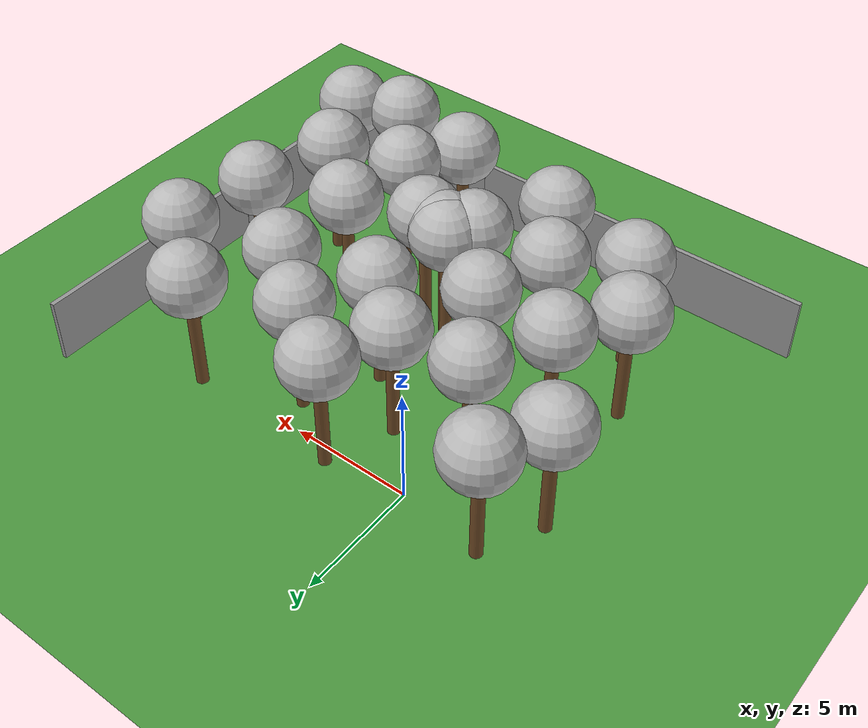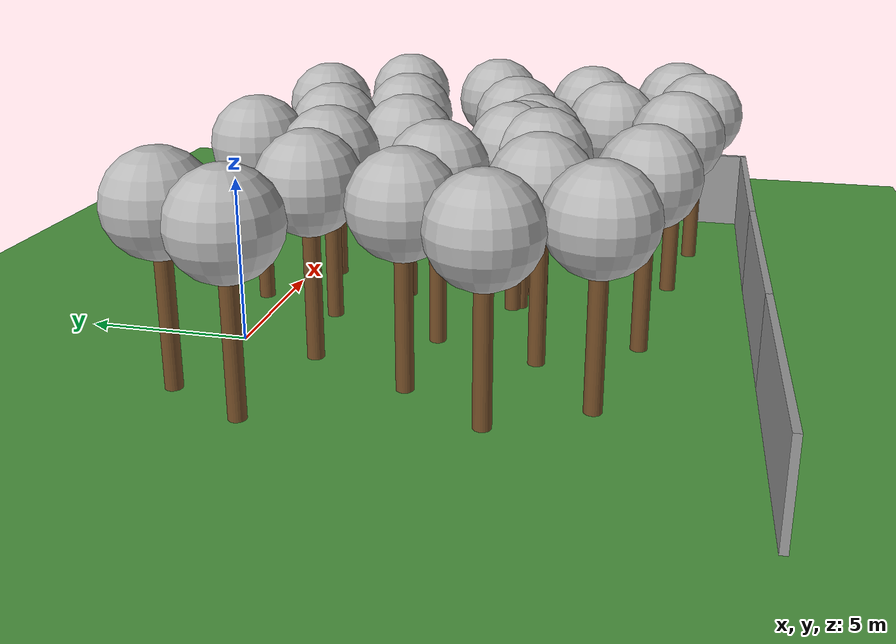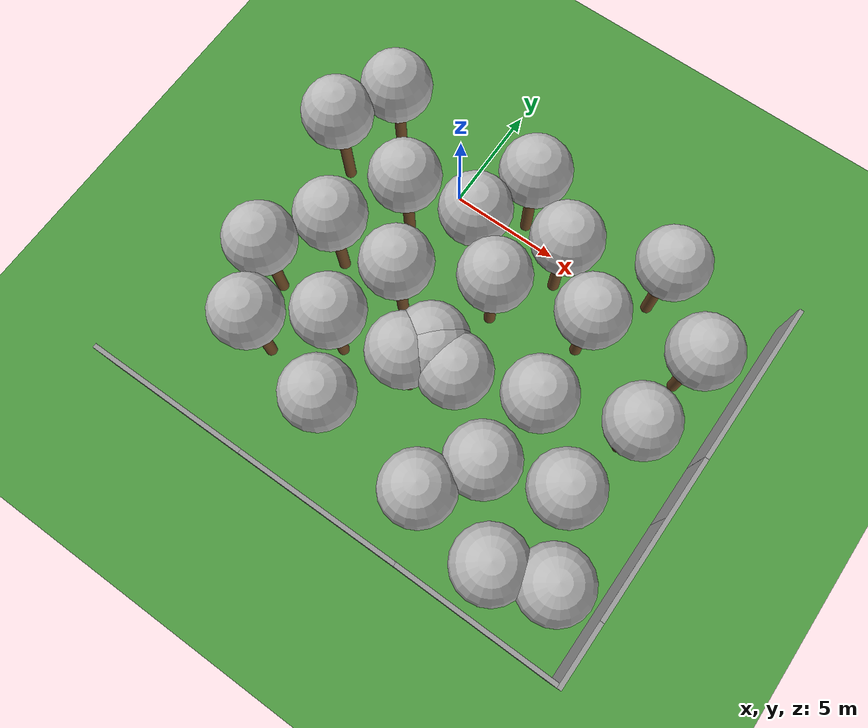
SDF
<sdf version="1.7">
 <world name="default">
  <model name="tree_simple478">
   <static>1</static>
   <link name="link">
    <pose>0 0 0.1 0 -0 0</pose>
    <collision name="collision_trunk">
     <pose>0 0 2 0 -0 0</pose>
     <geometry><cylinder><radius>0.25</radius><length>4</length></cylinder></geometry>
    </collision>
    <collision name="collision_treetop">
     <pose>0 0 5.2 0 -0 0</pose>
     <geometry><sphere><radius>1.5</radius></sphere></geometry>
    </collision>
    <visual name="trunk">
     <pose>0 0 2 0 -0 0</pose>
     <geometry><cylinder><radius>0.25</radius><length>4</length></cylinder></geometry>
     <material>
      <script>
       <uri>model://tree_simple/scripts</uri>
       <uri>model://tree_simple/materials/textures</uri>
       <name>TreeSimple/Trunk</name>
      </script>
     </material>
    </visual>
    <visual name="treetop">
     <pose>0 0 5.2 0 -0 0</pose>
     <geometry><sphere><radius>1.5</radius></sphere></geometry>
     <material>
      <script>
       <uri>model://tree_simple/scripts</uri>
       <uri>model://tree_simple/materials/textures</uri>
       <name>TreeSimple/Treetop</name>
      </script>
     </material>
    </visual>
   </link>
   <pose>6.74093 -12.3163 0 0 -0 0</pose>
  </model>
  <model name="tree_simple463">
   <static>1</static>
   <link name="link">
    <pose>0 0 0.1 0 -0 0</pose>
    <collision name="collision_trunk">
     <pose>0 0 2 0 -0 0</pose>
     <geometry><cylinder><radius>0.25</radius><length>4</length></cylinder></geometry>
    </collision>
    <collision name="collision_treetop">
     <pose>0 0 5.2 0 -0 0</pose>
     <geometry><sphere><radius>1.5</radius></sphere></geometry>
    </collision>
    <visual name="trunk">
     <pose>0 0 2 0 -0 0</pose>
     <geometry><cylinder><radius>0.25</radius><length>4</length></cylinder></geometry>
     <material>
      <script>
       <uri>model://tree_simple/scripts</uri>
       <uri>model://tree_simple/materials/textures</uri>
       <name>TreeSimple/Trunk</name>
      </script>
     </material>
    </visual>
    <visual name="treetop">
     <pose>0 0 5.2 0 -0 0</pose>
     <geometry><sphere><radius>1.5</radius></sphere></geometry>
     <material>
      <script>
       <uri>model://tree_simple/scripts</uri>
       <uri>model://tree_simple/materials/textures</uri>
       <name>TreeSimple/Treetop</name>
      </script>
     </material>
    </visual>
   </link>
   <pose>4.14453 -7.71734 0 0 -0 0</pose>
  </model>
  <model name="tree_simple432">
   <static>1</static>
   <link name="link">
    <pose>0 0 0.1 0 -0 0</pose>
    <collision name="collision_trunk">
     <pose>0 0 2 0 -0 0</pose>
     <geometry><cylinder><radius>0.25</radius><length>4</length></cylinder></geometry>
    </collision>
    <collision name="collision_treetop">
     <pose>0 0 5.2 0 -0 0</pose>
     <geometry><sphere><radius>1.5</radius></sphere></geometry>
    </collision>
    <visual name="trunk">
     <pose>0 0 2 0 -0 0</pose>
     <geometry><cylinder><radius>0.25</radius><length>4</length></cylinder></geometry>
     <material>
      <script>
       <uri>model://tree_simple/scripts</uri>
       <uri>model://tree_simple/materials/textures</uri>
       <name>TreeSimple/Trunk</name>
      </script>
     </material>
    </visual>
    <visual name="treetop">
     <pose>0 0 5.2 0 -0 0</pose>
     <geometry><sphere><radius>1.5</radius></sphere></geometry>
     <material>
      <script>
       <uri>model://tree_simple/scripts</uri>
       <uri>model://tree_simple/materials/textures</uri>
       <name>TreeSimple/Treetop</name>
      </script>
     </material>
    </visual>
   </link>
   <pose>8.39658 -6.88849 0 0 -0 0</pose>
  </model>
  <model name="tree_simple392">
   <static>1</static>
   <link name="link">
    <pose>0 0 0.1 0 -0 0</pose>
    <collision name="collision_trunk">
     <pose>0 0 2 0 -0 0</pose>
     <geometry><cylinder><radius>0.25</radius><length>4</length></cylinder></geometry>
    </collision>
    <collision name="collision_treetop">
     <pose>0 0 5.2 0 -0 0</pose>
     <geometry><sphere><radius>1.5</radius></sphere></geometry>
    </collision>
    <visual name="trunk">
     <pose>0 0 2 0 -0 0</pose>
     <geometry><cylinder><radius>0.25</radius><length>4</length></cylinder></geometry>
     <material>
      <script>
       <uri>model://tree_simple/scripts</uri>
       <uri>model://tree_simple/materials/textures</uri>
       <name>TreeSimple/Trunk</name>
      </script>
     </material>
    </visual>
    <visual name="treetop">
     <pose>0 0 5.2 0 -0 0</pose>
     <geometry><sphere><radius>1.5</radius></sphere></geometry>
     <material>
      <script>
       <uri>model://tree_simple/scripts</uri>
       <uri>model://tree_simple/materials/textures</uri>
       <name>TreeSimple/Treetop</name>
      </script>
     </material>
    </visual>
   </link>
   <pose>-2.49228 -10.6348 0 0 -0 0</pose>
  </model>
  <model name="tree_simple389">
   <static>1</static>
   <link name="link">
    <pose>0 0 0.1 0 -0 0</pose>
    <collision name="collision_trunk">
     <pose>0 0 2 0 -0 0</pose>
     <geometry><cylinder><radius>0.25</radius><length>4</length></cylinder></geometry>
    </collision>
    <collision name="collision_treetop">
     <pose>0 0 5.2 0 -0 0</pose>
     <geometry><sphere><radius>1.5</radius></sphere></geometry>
    </collision>
    <visual name="trunk">
     <pose>0 0 2 0 -0 0</pose>
     <geometry><cylinder><radius>0.25</radius><length>4</length></cylinder></geometry>
     <material>
      <script>
       <uri>model://tree_simple/scripts</uri>
       <uri>model://tree_simple/materials/textures</uri>
       <name>TreeSimple/Trunk</name>
      </script>
     </material>
    </visual>
    <visual name="treetop">
     <pose>0 0 5.2 0 -0 0</pose>
     <geometry><sphere><radius>1.5</radius></sphere></geometry>
     <material>
      <script>
       <uri>model://tree_simple/scripts</uri>
       <uri>model://tree_simple/materials/textures</uri>
       <name>TreeSimple/Treetop</name>
      </script>
     </material>
    </visual>
   </link>
   <pose>12.5934 -12.2598 0 0 -0 0</pose>
  </model>
  <model name="tree_simple376">
   <static>1</static>
   <link name="link">
    <pose>0 0 0.1 0 -0 0</pose>
    <collision name="collision_trunk">
     <pose>0 0 2 0 -0 0</pose>
     <geometry><cylinder><radius>0.25</radius><length>4</length></cylinder></geometry>
    </collision>
    <collision name="collision_treetop">
     <pose>0 0 5.2 0 -0 0</pose>
     <geometry><sphere><radius>1.5</radius></sphere></geometry>
    </collision>
    <visual name="trunk">
     <pose>0 0 2 0 -0 0</pose>
     <geometry><cylinder><radius>0.25</radius><length>4</length></cylinder></geometry>
     <material>
      <script>
       <uri>model://tree_simple/scripts</uri>
       <uri>model://tree_simple/materials/textures</uri>
       <name>TreeSimple/Trunk</name>
      </script>
     </material>
    </visual>
    <visual name="treetop">
     <pose>0 0 5.2 0 -0 0</pose>
     <geometry><sphere><radius>1.5</radius></sphere></geometry>
     <material>
      <script>
       <uri>model://tree_simple/scripts</uri>
       <uri>model://tree_simple/materials/textures</uri>
       <name>TreeSimple/Treetop</name>
      </script>
     </material>
    </visual>
   </link>
   <pose>-3.57496 0.511559 0 0 -0 0</pose>
  </model>
  <model name="tree_simple308">
   <static>1</static>
   <link name="link">
    <pose>0 0 0.1 0 -0 0</pose>
    <collision name="collision_trunk">
     <pose>0 0 2 0 -0 0</pose>
     <geometry><cylinder><radius>0.25</radius><length>4</length></cylinder></geometry>
    </collision>
    <collision name="collision_treetop">
     <pose>0 0 5.2 0 -0 0</pose>
     <geometry><sphere><radius>1.5</radius></sphere></geometry>
    </collision>
    <visual name="trunk">
     <pose>0 0 2 0 -0 0</pose>
     <geometry><cylinder><radius>0.25</radius><length>4</length></cylinder></geometry>
     <material>
      <script>
       <uri>model://tree_simple/scripts</uri>
       <uri>model://tree_simple/materials/textures</uri>
       <name>TreeSimple/Trunk</name>
      </script>
     </material>
    </visual>
    <visual name="treetop">
     <pose>0 0 5.2 0 -0 0</pose>
     <geometry><sphere><radius>1.5</radius></sphere></geometry>
     <material>
      <script>
       <uri>model://tree_simple/scripts</uri>
       <uri>model://tree_simple/materials/textures</uri>
       <name>TreeSimple/Treetop</name>
      </script>
     </material>
    </visual>
   </link>
   <pose>3.23733 0.582979 0 0 -0 0</pose>
  </model>
  <model name="tree_simple222">
   <static>1</static>
   <link name="link">
    <pose>0 0 0.1 0 -0 0</pose>
    <collision name="collision_trunk">
     <pose>0 0 2 0 -0 0</pose>
     <geometry><cylinder><radius>0.25</radius><length>4</length></cylinder></geometry>
    </collision>
    <collision name="collision_treetop">
     <pose>0 0 5.2 0 -0 0</pose>
     <geometry><sphere><radius>1.5</radius></sphere></geometry>
    </collision>
    <visual name="trunk">
     <pose>0 0 2 0 -0 0</pose>
     <geometry><cylinder><radius>0.25</radius><length>4</length></cylinder></geometry>
     <material>
      <script>
       <uri>model://tree_simple/scripts</uri>
       <uri>model://tree_simple/materials/textures</uri>
       <name>TreeSimple/Trunk</name>
      </script>
     </material>
    </visual>
    <visual name="treetop">
     <pose>0 0 5.2 0 -0 0</pose>
     <geometry><sphere><radius>1.5</radius></sphere></geometry>
     <material>
      <script>
       <uri>model://tree_simple/scripts</uri>
       <uri>model://tree_simple/materials/textures</uri>
       <name>TreeSimple/Treetop</name>
      </script>
     </material>
    </visual>
   </link>
   <pose>3.92505 -7.51224 0 0 -0 0</pose>
  </model>
  <model name="tree_simple154">
   <static>1</static>
   <link name="link">
    <pose>0 0 0.1 0 -0 0</pose>
    <collision name="collision_trunk">
     <pose>0 0 2 0 -0 0</pose>
     <geometry><cylinder><radius>0.25</radius><length>4</length></cylinder></geometry>
    </collision>
    <collision name="collision_treetop">
     <pose>0 0 5.2 0 -0 0</pose>
     <geometry><sphere><radius>1.5</radius></sphere></geometry>
    </collision>
    <visual name="trunk">
     <pose>0 0 2 0 -0 0</pose>
     <geometry><cylinder><radius>0.25</radius><length>4</length></cylinder></geometry>
     <material>
      <script>
       <uri>model://tree_simple/scripts</uri>
       <uri>model://tree_simple/materials/textures</uri>
       <name>TreeSimple/Trunk</name>
      </script>
     </material>
    </visual>
    <visual name="treetop">
     <pose>0 0 5.2 0 -0 0</pose>
     <geometry><sphere><radius>1.5</radius></sphere></geometry>
     <material>
      <script>
       <uri>model://tree_simple/scripts</uri>
       <uri>model://tree_simple/materials/textures</uri>
       <name>TreeSimple/Treetop</name>
      </script>
     </material>
    </visual>
   </link>
   <pose>3.29558 -8.44092 0 0 -0 0</pose>
  </model>
  <model name="tree_simple124">
   <static>1</static>
   <link name="link">
    <pose>0 0 0.1 0 -0 0</pose>
    <collision name="collision_trunk">
     <pose>0 0 2 0 -0 0</pose>
     <geometry><cylinder><radius>0.25</radius><length>4</length></cylinder></geometry>
    </collision>
    <collision name="collision_treetop">
     <pose>0 0 5.2 0 -0 0</pose>
     <geometry><sphere><radius>1.5</radius></sphere></geometry>
    </collision>
    <visual name="trunk">
     <pose>0 0 2 0 -0 0</pose>
     <geometry><cylinder><radius>0.25</radius><length>4</length></cylinder></geometry>
     <material>
      <script>
       <uri>model://tree_simple/scripts</uri>
       <uri>model://tree_simple/materials/textures</uri>
       <name>TreeSimple/Trunk</name>
      </script>
     </material>
    </visual>
    <visual name="treetop">
     <pose>0 0 5.2 0 -0 0</pose>
     <geometry><sphere><radius>1.5</radius></sphere></geometry>
     <material>
      <script>
       <uri>model://tree_simple/scripts</uri>
       <uri>model://tree_simple/materials/textures</uri>
       <name>TreeSimple/Treetop</name>
      </script>
     </material>
    </visual>
   </link>
   <pose>5.2994 -7.97081 0 0 -0 0</pose>
  </model>
  <model name="tree_simple106">
   <static>1</static>
   <link name="link">
    <pose>0 0 0.1 0 -0 0</pose>
    <collision name="collision_trunk">
     <pose>0 0 2 0 -0 0</pose>
     <geometry><cylinder><radius>0.25</radius><length>4</length></cylinder></geometry>
    </collision>
    <collision name="collision_treetop">
     <pose>0 0 5.2 0 -0 0</pose>
     <geometry><sphere><radius>1.5</radius></sphere></geometry>
    </collision>
    <visual name="trunk">
     <pose>0 0 2 0 -0 0</pose>
     <geometry><cylinder><radius>0.25</radius><length>4</length></cylinder></geometry>
     <material>
      <script>
       <uri>model://tree_simple/scripts</uri>
       <uri>model://tree_simple/materials/textures</uri>
       <name>TreeSimple/Trunk</name>
      </script>
     </material>
    </visual>
    <visual name="treetop">
     <pose>0 0 5.2 0 -0 0</pose>
     <geometry><sphere><radius>1.5</radius></sphere></geometry>
     <material>
      <script>
       <uri>model://tree_simple/scripts</uri>
       <uri>model://tree_simple/materials/textures</uri>
       <name>TreeSimple/Treetop</name>
      </script>
     </material>
    </visual>
   </link>
   <pose>-0.906213 -2.57618 0 0 -0 0</pose>
  </model>
  <model name="tree_simple61">
   <static>1</static>
   <link name="link">
    <pose>0 0 0.1 0 -0 0</pose>
    <collision name="collision_trunk">
     <pose>0 0 2 0 -0 0</pose>
     <geometry><cylinder><radius>0.25</radius><length>4</length></cylinder></geometry>
    </collision>
    <collision name="collision_treetop">
     <pose>0 0 5.2 0 -0 0</pose>
     <geometry><sphere><radius>1.5</radius></sphere></geometry>
    </collision>
    <visual name="trunk">
     <pose>0 0 2 0 -0 0</pose>
     <geometry><cylinder><radius>0.25</radius><length>4</length></cylinder></geometry>
     <material>
      <script>
       <uri>model://tree_simple/scripts</uri>
       <uri>model://tree_simple/materials/textures</uri>
       <name>TreeSimple/Trunk</name>
      </script>
     </material>
    </visual>
    <visual name="treetop">
     <pose>0 0 5.2 0 -0 0</pose>
     <geometry><sphere><radius>1.5</radius></sphere></geometry>
     <material>
      <script>
       <uri>model://tree_simple/scripts</uri>
       <uri>model://tree_simple/materials/textures</uri>
       <name>TreeSimple/Treetop</name>
      </script>
     </material>
    </visual>
   </link>
   <pose>11.1084 -9.22601 0 0 -0 0</pose>
  </model>
  <model name="tree_simple60">
   <static>1</static>
   <link name="link">
    <pose>0 0 0.1 0 -0 0</pose>
    <collision name="collision_trunk">
     <pose>0 0 2 0 -0 0</pose>
     <geometry><cylinder><radius>0.25</radius><length>4</length></cylinder></geometry>
    </collision>
    <collision name="collision_treetop">
     <pose>0 0 5.2 0 -0 0</pose>
     <geometry><sphere><radius>1.5</radius></sphere></geometry>
    </collision>
    <visual name="trunk">
     <pose>0 0 2 0 -0 0</pose>
     <geometry><cylinder><radius>0.25</radius><length>4</length></cylinder></geometry>
     <material>
      <script>
       <uri>model://tree_simple/scripts</uri>
       <uri>model://tree_simple/materials/textures</uri>
       <name>TreeSimple/Trunk</name>
      </script>
     </material>
    </visual>
    <visual name="treetop">
     <pose>0 0 5.2 0 -0 0</pose>
     <geometry><sphere><radius>1.5</radius></sphere></geometry>
     <material>
      <script>
       <uri>model://tree_simple/scripts</uri>
       <uri>model://tree_simple/materials/textures</uri>
       <name>TreeSimple/Treetop</name>
      </script>
     </material>
    </visual>
   </link>
   <pose>-4.80911 -1.85604 0 0 -0 0</pose>
  </model>
  <model name="tree_simple40">
   <static>1</static>
   <link name="link">
    <pose>0 0 0.1 0 -0 0</pose>
    <collision name="collision_trunk">
     <pose>0 0 2 0 -0 0</pose>
     <geometry><cylinder><radius>0.25</radius><length>4</length></cylinder></geometry>
    </collision>
    <collision name="collision_treetop">
     <pose>0 0 5.2 0 -0 0</pose>
     <geometry><sphere><radius>1.5</radius></sphere></geometry>
    </collision>
    <visual name="trunk">
     <pose>0 0 2 0 -0 0</pose>
     <geometry><cylinder><radius>0.25</radius><length>4</length></cylinder></geometry>
     <material>
      <script>
       <uri>model://tree_simple/scripts</uri>
       <uri>model://tree_simple/materials/textures</uri>
       <name>TreeSimple/Trunk</name>
      </script>
     </material>
    </visual>
    <visual name="treetop">
     <pose>0 0 5.2 0 -0 0</pose>
     <geometry><sphere><radius>1.5</radius></sphere></geometry>
     <material>
      <script>
       <uri>model://tree_simple/scripts</uri>
       <uri>model://tree_simple/materials/textures</uri>
       <name>TreeSimple/Treetop</name>
      </script>
     </material>
    </visual>
   </link>
   <pose>10.3611 -13.0055 0 0 -0 0</pose>
  </model>
  <model name="tree_simple2">
   <static>1</static>
   <link name="link">
    <pose>0 0 0.1 0 -0 0</pose>
    <collision name="collision_trunk">
     <pose>0 0 2 0 -0 0</pose>
     <geometry><cylinder><radius>0.25</radius><length>4</length></cylinder></geometry>
    </collision>
    <collision name="collision_treetop">
     <pose>0 0 5.2 0 -0 0</pose>
     <geometry><sphere><radius>1.5</radius></sphere></geometry>
    </collision>
    <visual name="trunk">
     <pose>0 0 2 0 -0 0</pose>
     <geometry><cylinder><radius>0.25</radius><length>4</length></cylinder></geometry>
     <material>
      <script>
       <uri>model://tree_simple/scripts</uri>
       <uri>model://tree_simple/materials/textures</uri>
       <name>TreeSimple/Trunk</name>
      </script>
     </material>
    </visual>
    <visual name="treetop">
     <pose>0 0 5.2 0 -0 0</pose>
     <geometry><sphere><radius>1.5</radius></sphere></geometry>
     <material>
      <script>
       <uri>model://tree_simple/scripts</uri>
       <uri>model://tree_simple/materials/textures</uri>
       <name>TreeSimple/Treetop</name>
      </script>
     </material>
    </visual>
   </link>
   <pose>-2.32375 -5.59992 0 0 -0 0</pose>
  </model>
  <model name="ground_plane">
   <static>1</static>
   <link name="link">
    <collision name="collision">
     <geometry><plane><normal>0 0 1</normal><size>30 30</size></plane></geometry>
     <surface><friction><ode><mu>100</mu><mu2>50</mu2></ode></friction></surface>
    </collision>
    <visual name="grass">
     <cast_shadows>0</cast_shadows>
     <geometry><plane><normal>0 0 1</normal><size>30 30</size></plane></geometry>
     <material>
      <script><uri>file://media/materials/scripts/Gazebo.material</uri><name>Gazebo/Grass</name></script>
     </material>
    </visual>
   </link>
  </model>
  <model name="grey_wall">
   <static>1</static>
   <link name="link">
    <pose>0 0 1.4 0 -0 0</pose>
    <collision name="collision"><geometry><box><size>7.5 0.2 2.8</size></box></geometry></collision>
    <visual name="visual">
     <cast_shadows>0</cast_shadows>
     <geometry><box><size>7.5 0.2 2.8</size></box></geometry>
     <material>
      <script>
       <uri>model://grey_wall/materials/scripts</uri>
       <uri>model://grey_wall/materials/textures</uri>
       <name>vrc/grey_wall</name>
      </script>
     </material>
    </visual>
   </link>
   <pose>15.018 -0.915784 0 0 -0 1.56351</pose>
  </model>
  <model name="grey_wall_clone">
   <static>1</static>
   <link name="link">
    <pose>0 0 1.4 0 -0 0</pose>
    <collision name="collision"><geometry><box><size>7.5 0.2 2.8</size></box></geometry></collision>
    <visual name="visual">
     <cast_shadows>0</cast_shadows>
     <geometry><box><size>7.5 0.2 2.8</size></box></geometry>
     <material>
      <script>
       <uri>model://grey_wall/materials/scripts</uri>
       <uri>model://grey_wall/materials/textures</uri>
       <name>vrc/grey_wall</name>
      </script>
     </material>
    </visual>
   </link>
   <pose>14.9667 -8.4083 0 0 -0 1.56351</pose>
  </model>
  <model name="grey_wall_clone_0">
   <static>1</static>
   <link name="link">
    <pose>0 0 1.4 0 -0 0</pose>
    <collision name="collision"><geometry><box><size>7.5 0.2 2.8</size></box></geometry></collision>
    <visual name="visual">
     <cast_shadows>0</cast_shadows>
     <geometry><box><size>7.5 0.2 2.8</size></box></geometry>
     <material>
      <script>
       <uri>model://grey_wall/materials/scripts</uri>
       <uri>model://grey_wall/materials/textures</uri>
       <name>vrc/grey_wall</name>
      </script>
     </material>
    </visual>
   </link>
   <pose>14.943 -11.2857 0 0 -0 1.56351</pose>
  </model>
  <model name="grey_wall_clone_2_clone_clone_2_clone_2_clone">
   <static>1</static>
   <link name="link">
    <pose>0 0 1.4 0 -0 0</pose>
    <collision name="collision"><geometry><box><size>7.5 0.2 2.8</size></box></geometry></collision>
    <visual name="visual">
     <cast_shadows>0</cast_shadows>
     <geometry><box><size>7.5 0.2 2.8</size></box></geometry>
     <material>
      <script>
       <uri>model://grey_wall/materials/scripts</uri>
       <uri>model://grey_wall/materials/textures</uri>
       <name>vrc/grey_wall</name>
      </script>
     </material>
    </visual>
   </link>
   <pose>-3.80062 -14.9373 0 0 -0 0.003227</pose>
  </model>
  <model name="grey_wall_clone_2_clone_clone_2_clone_2_clone_0">
   <static>1</static>
   <link name="link">
    <pose>0 0 1.4 0 -0 0</pose>
    <collision name="collision"><geometry><box><size>7.5 0.2 2.8</size></box></geometry></collision>
    <visual name="visual">
     <cast_shadows>0</cast_shadows>
     <geometry><box><size>7.5 0.2 2.8</size></box></geometry>
     <material>
      <script>
       <uri>model://grey_wall/materials/scripts</uri>
       <uri>model://grey_wall/materials/textures</uri>
       <name>vrc/grey_wall</name>
      </script>
     </material>
    </visual>
   </link>
   <pose>3.68034 -14.9124 0 0 -0 0.003227</pose>
  </model>
  <model name="grey_wall_clone_2_clone_clone_2_clone_2_clone_1">
   <static>1</static>
   <link name="link">
    <pose>0 0 1.4 0 -0 0</pose>
    <collision name="collision"><geometry><box><size>7.5 0.2 2.8</size></box></geometry></collision>
    <visual name="visual">
     <cast_shadows>0</cast_shadows>
     <geometry><box><size>7.5 0.2 2.8</size></box></geometry>
     <material>
      <script>
       <uri>model://grey_wall/materials/scripts</uri>
       <uri>model://grey_wall/materials/textures</uri>
       <name>vrc/grey_wall</name>
      </script>
     </material>
    </visual>
   </link>
   <pose>11.1032 -14.9194 0 0 0 -0.005696</pose>
  </model>
  <model name="tree_simple432_clone">
   <static>1</static>
   <link name="link">
    <pose>0 0 0.1 0 -0 0</pose>
    <collision name="collision_trunk">
     <pose>0 0 2 0 -0 0</pose>
     <geometry><cylinder><radius>0.25</radius><length>4</length></cylinder></geometry>
    </collision>
    <collision name="collision_treetop">
     <pose>0 0 5.2 0 -0 0</pose>
     <geometry><sphere><radius>1.5</radius></sphere></geometry>
    </collision>
    <visual name="trunk">
     <pose>0 0 2 0 -0 0</pose>
     <geometry><cylinder><radius>0.25</radius><length>4</length></cylinder></geometry>
     <material>
      <script>
       <uri>model://tree_simple/scripts</uri>
       <uri>model://tree_simple/materials/textures</uri>
       <name>TreeSimple/Trunk</name>
      </script>
     </material>
    </visual>
    <visual name="treetop">
     <pose>0 0 5.2 0 -0 0</pose>
     <geometry><sphere><radius>1.5</radius></sphere></geometry>
     <material>
      <script>
       <uri>model://tree_simple/scripts</uri>
       <uri>model://tree_simple/materials/textures</uri>
       <name>TreeSimple/Treetop</name>
      </script>
     </material>
    </visual>
   </link>
   <pose>12.0222 -5.59209 0 0 -0 0</pose>
  </model>
  <model name="tree_simple432_clone_0">
   <static>1</static>
   <link name="link">
    <pose>0 0 0.1 0 -0 0</pose>
    <collision name="collision_trunk">
     <pose>0 0 2 0 -0 0</pose>
     <geometry><cylinder><radius>0.25</radius><length>4</length></cylinder></geometry>
    </collision>
    <collision name="collision_treetop">
     <pose>0 0 5.2 0 -0 0</pose>
     <geometry><sphere><radius>1.5</radius></sphere></geometry>
    </collision>
    <visual name="trunk">
     <pose>0 0 2 0 -0 0</pose>
     <geometry><cylinder><radius>0.25</radius><length>4</length></cylinder></geometry>
     <material>
      <script>
       <uri>model://tree_simple/scripts</uri>
       <uri>model://tree_simple/materials/textures</uri>
       <name>TreeSimple/Trunk</name>
      </script>
     </material>
    </visual>
    <visual name="treetop">
     <pose>0 0 5.2 0 -0 0</pose>
     <geometry><sphere><radius>1.5</radius></sphere></geometry>
     <material>
      <script>
       <uri>model://tree_simple/scripts</uri>
       <uri>model://tree_simple/materials/textures</uri>
       <name>TreeSimple/Treetop</name>
      </script>
     </material>
    </visual>
   </link>
   <pose>12.5387 -1.98703 0 0 -0 0</pose>
  </model>
  <model name="tree_simple432_clone_1">
   <static>1</static>
   <link name="link">
    <pose>0 0 0.1 0 -0 0</pose>
    <collision name="collision_trunk">
     <pose>0 0 2 0 -0 0</pose>
     <geometry><cylinder><radius>0.25</radius><length>4</length></cylinder></geometry>
    </collision>
    <collision name="collision_treetop">
     <pose>0 0 5.2 0 -0 0</pose>
     <geometry><sphere><radius>1.5</radius></sphere></geometry>
    </collision>
    <visual name="trunk">
     <pose>0 0 2 0 -0 0</pose>
     <geometry><cylinder><radius>0.25</radius><length>4</length></cylinder></geometry>
     <material>
      <script>
       <uri>model://tree_simple/scripts</uri>
       <uri>model://tree_simple/materials/textures</uri>
       <name>TreeSimple/Trunk</name>
      </script>
     </material>
    </visual>
    <visual name="treetop">
     <pose>0 0 5.2 0 -0 0</pose>
     <geometry><sphere><radius>1.5</radius></sphere></geometry>
     <material>
      <script>
       <uri>model://tree_simple/scripts</uri>
       <uri>model://tree_simple/materials/textures</uri>
       <name>TreeSimple/Treetop</name>
      </script>
     </material>
    </visual>
   </link>
   <pose>8.25345 -3.04234 0 0 -0 0</pose>
  </model>
  <model name="tree_simple432_clone_2">
   <static>1</static>
   <link name="link">
    <pose>0 0 0.1 0 -0 0</pose>
    <collision name="collision_trunk">
     <pose>0 0 2 0 -0 0</pose>
     <geometry><cylinder><radius>0.25</radius><length>4</length></cylinder></geometry>
    </collision>
    <collision name="collision_treetop">
     <pose>0 0 5.2 0 -0 0</pose>
     <geometry><sphere><radius>1.5</radius></sphere></geometry>
    </collision>
    <visual name="trunk">
     <pose>0 0 2 0 -0 0</pose>
     <geometry><cylinder><radius>0.25</radius><length>4</length></cylinder></geometry>
     <material>
      <script>
       <uri>model://tree_simple/scripts</uri>
       <uri>model://tree_simple/materials/textures</uri>
       <name>TreeSimple/Trunk</name>
      </script>
     </material>
    </visual>
    <visual name="treetop">
     <pose>0 0 5.2 0 -0 0</pose>
     <geometry><sphere><radius>1.5</radius></sphere></geometry>
     <material>
      <script>
       <uri>model://tree_simple/scripts</uri>
       <uri>model://tree_simple/materials/textures</uri>
       <name>TreeSimple/Treetop</name>
      </script>
     </material>
    </visual>
   </link>
   <pose>4.38868 -3.98099 0 0 -0 0</pose>
  </model>
  <model name="tree_simple432_clone_3">
   <static>1</static>
   <link name="link">
    <pose>0 0 0.1 0 -0 0</pose>
    <collision name="collision_trunk">
     <pose>0 0 2 0 -0 0</pose>
     <geometry><cylinder><radius>0.25</radius><length>4</length></cylinder></geometry>
    </collision>
    <collision name="collision_treetop">
     <pose>0 0 5.2 0 -0 0</pose>
     <geometry><sphere><radius>1.5</radius></sphere></geometry>
    </collision>
    <visual name="trunk">
     <pose>0 0 2 0 -0 0</pose>
     <geometry><cylinder><radius>0.25</radius><length>4</length></cylinder></geometry>
     <material>
      <script>
       <uri>model://tree_simple/scripts</uri>
       <uri>model://tree_simple/materials/textures</uri>
       <name>TreeSimple/Trunk</name>
      </script>
     </material>
    </visual>
    <visual name="treetop">
     <pose>0 0 5.2 0 -0 0</pose>
     <geometry><sphere><radius>1.5</radius></sphere></geometry>
     <material>
      <script>
       <uri>model://tree_simple/scripts</uri>
       <uri>model://tree_simple/materials/textures</uri>
       <name>TreeSimple/Treetop</name>
      </script>
     </material>
    </visual>
   </link>
   <pose>0.98718 -5.73494 0 0 -0 0</pose>
  </model>
  <model name="tree_simple432_clone_4">
   <static>1</static>
   <link name="link">
    <pose>0 0 0.1 0 -0 0</pose>
    <collision name="collision_trunk">
     <pose>0 0 2 0 -0 0</pose>
     <geometry><cylinder><radius>0.25</radius><length>4</length></cylinder></geometry>
    </collision>
    <collision name="collision_treetop">
     <pose>0 0 5.2 0 -0 0</pose>
     <geometry><sphere><radius>1.5</radius></sphere></geometry>
    </collision>
    <visual name="trunk">
     <pose>0 0 2 0 -0 0</pose>
     <geometry><cylinder><radius>0.25</radius><length>4</length></cylinder></geometry>
     <material>
      <script>
       <uri>model://tree_simple/scripts</uri>
       <uri>model://tree_simple/materials/textures</uri>
       <name>TreeSimple/Trunk</name>
      </script>
     </material>
    </visual>
    <visual name="treetop">
     <pose>0 0 5.2 0 -0 0</pose>
     <geometry><sphere><radius>1.5</radius></sphere></geometry>
     <material>
      <script>
       <uri>model://tree_simple/scripts</uri>
       <uri>model://tree_simple/materials/textures</uri>
       <name>TreeSimple/Treetop</name>
      </script>
     </material>
    </visual>
   </link>
   <pose>1.6579 -11.606 0 0 -0 0</pose>
  </model>
  <model name="tree_simple432_clone_22">
   <static>1</static>
   <link name="link">
    <pose>0 0 0.1 0 -0 0</pose>
    <collision name="collision_trunk">
     <pose>0 0 2 0 -0 0</pose>
     <geometry><cylinder><radius>0.25</radius><length>4</length></cylinder></geometry>
    </collision>
    <collision name="collision_treetop">
     <pose>0 0 5.2 0 -0 0</pose>
     <geometry><sphere><radius>1.5</radius></sphere></geometry>
    </collision>
    <visual name="trunk">
     <pose>0 0 2 0 -0 0</pose>
     <geometry><cylinder><radius>0.25</radius><length>4</length></cylinder></geometry>
     <material>
      <script>
       <uri>model://tree_simple/scripts</uri>
       <uri>model://tree_simple/materials/textures</uri>
       <name>TreeSimple/Trunk</name>
      </script>
     </material>
    </visual>
    <visual name="treetop">
     <pose>0 0 5.2 0 -0 0</pose>
     <geometry><sphere><radius>1.5</radius></sphere></geometry>
     <material>
      <script>
       <uri>model://tree_simple/scripts</uri>
       <uri>model://tree_simple/materials/textures</uri>
       <name>TreeSimple/Treetop</name>
      </script>
     </material>
    </visual>
   </link>
   <pose>0.047236 -8.81548 0 0 -0 0</pose>
  </model>
  <model name="tree_simple432_clone_23">
   <static>1</static>
   <link name="link">
    <pose>0 0 0.1 0 -0 0</pose>
    <collision name="collision_trunk">
     <pose>0 0 2 0 -0 0</pose>
     <geometry><cylinder><radius>0.25</radius><length>4</length></cylinder></geometry>
    </collision>
    <collision name="collision_treetop">
     <pose>0 0 5.2 0 -0 0</pose>
     <geometry><sphere><radius>1.5</radius></sphere></geometry>
    </collision>
    <visual name="trunk">
     <pose>0 0 2 0 -0 0</pose>
     <geometry><cylinder><radius>0.25</radius><length>4</length></cylinder></geometry>
     <material>
      <script>
       <uri>model://tree_simple/scripts</uri>
       <uri>model://tree_simple/materials/textures</uri>
       <name>TreeSimple/Trunk</name>
      </script>
     </material>
    </visual>
    <visual name="treetop">
     <pose>0 0 5.2 0 -0 0</pose>
     <geometry><sphere><radius>1.5</radius></sphere></geometry>
     <material>
      <script>
       <uri>model://tree_simple/scripts</uri>
       <uri>model://tree_simple/materials/textures</uri>
       <name>TreeSimple/Treetop</name>
      </script>
     </material>
    </visual>
   </link>
   <pose>9.74776 0.384013 0 0 -0 0</pose>
  </model>
  <model name="tree_simple432_clone_26">
   <static>1</static>
   <link name="link">
    <pose>0 0 0.1 0 -0 0</pose>
    <collision name="collision_trunk">
     <pose>0 0 2 0 -0 0</pose>
     <geometry><cylinder><radius>0.25</radius><length>4</length></cylinder></geometry>
    </collision>
    <collision name="collision_treetop">
     <pose>0 0 5.2 0 -0 0</pose>
     <geometry><sphere><radius>1.5</radius></sphere></geometry>
    </collision>
    <visual name="trunk">
     <pose>0 0 2 0 -0 0</pose>
     <geometry><cylinder><radius>0.25</radius><length>4</length></cylinder></geometry>
     <material>
      <script>
       <uri>model://tree_simple/scripts</uri>
       <uri>model://tree_simple/materials/textures</uri>
       <name>TreeSimple/Trunk</name>
      </script>
     </material>
    </visual>
    <visual name="treetop">
     <pose>0 0 5.2 0 -0 0</pose>
     <geometry><sphere><radius>1.5</radius></sphere></geometry>
     <material>
      <script>
       <uri>model://tree_simple/scripts</uri>
       <uri>model://tree_simple/materials/textures</uri>
       <name>TreeSimple/Treetop</name>
      </script>
     </material>
    </visual>
   </link>
   <pose>5.83103 -1.10495 0 0 -0 0</pose>
  </model>
  <model name="tree_simple432_clone_27">
   <static>1</static>
   <link name="link">
    <pose>0 0 0.1 0 -0 0</pose>
    <collision name="collision_trunk">
     <pose>0 0 2 0 -0 0</pose>
     <geometry><cylinder><radius>0.25</radius><length>4</length></cylinder></geometry>
    </collision>
    <collision name="collision_treetop">
     <pose>0 0 5.2 0 -0 0</pose>
     <geometry><sphere><radius>1.5</radius></sphere></geometry>
    </collision>
    <visual name="trunk">
     <pose>0 0 2 0 -0 0</pose>
     <geometry><cylinder><radius>0.25</radius><length>4</length></cylinder></geometry>
     <material>
      <script>
       <uri>model://tree_simple/scripts</uri>
       <uri>model://tree_simple/materials/textures</uri>
       <name>TreeSimple/Trunk</name>
      </script>
     </material>
    </visual>
    <visual name="treetop">
     <pose>0 0 5.2 0 -0 0</pose>
     <geometry><sphere><radius>1.5</radius></sphere></geometry>
     <material>
      <script>
       <uri>model://tree_simple/scripts</uri>
       <uri>model://tree_simple/materials/textures</uri>
       <name>TreeSimple/Treetop</name>
      </script>
     </material>
    </visual>
   </link>
   <pose>8.06251 -10.1375 0 0 -0 0</pose>
  </model>
  <model name="tree_simple432_clone_33">
   <static>1</static>
   <link name="link">
    <pose>0 0 0.1 0 -0 0</pose>
    <collision name="collision_trunk">
     <pose>0 0 2 0 -0 0</pose>
     <geometry><cylinder><radius>0.25</radius><length>4</length></cylinder></geometry>
    </collision>
    <collision name="collision_treetop">
     <pose>0 0 5.2 0 -0 0</pose>
     <geometry><sphere><radius>1.5</radius></sphere></geometry>
    </collision>
    <visual name="trunk">
     <pose>0 0 2 0 -0 0</pose>
     <geometry><cylinder><radius>0.25</radius><length>4</length></cylinder></geometry>
     <material>
      <script>
       <uri>model://tree_simple/scripts</uri>
       <uri>model://tree_simple/materials/textures</uri>
       <name>TreeSimple/Trunk</name>
      </script>
     </material>
    </visual>
    <visual name="treetop">
     <pose>0 0 5.2 0 -0 0</pose>
     <geometry><sphere><radius>1.5</radius></sphere></geometry>
     <material>
      <script>
       <uri>model://tree_simple/scripts</uri>
       <uri>model://tree_simple/materials/textures</uri>
       <name>TreeSimple/Treetop</name>
      </script>
     </material>
    </visual>
   </link>
   <pose>-3.9231 -8.0091 0 0 -0 0</pose>
  </model>
  <model name="tree_simple432_clone_34">
   <static>1</static>
   <link name="link">
    <pose>0 0 0.1 0 -0 0</pose>
    <collision name="collision_trunk">
     <pose>0 0 2 0 -0 0</pose>
     <geometry><cylinder><radius>0.25</radius><length>4</length></cylinder></geometry>
    </collision>
    <collision name="collision_treetop">
     <pose>0 0 5.2 0 -0 0</pose>
     <geometry><sphere><radius>1.5</radius></sphere></geometry>
    </collision>
    <visual name="trunk">
     <pose>0 0 2 0 -0 0</pose>
     <geometry><cylinder><radius>0.25</radius><length>4</length></cylinder></geometry>
     <material>
      <script>
       <uri>model://tree_simple/scripts</uri>
       <uri>model://tree_simple/materials/textures</uri>
       <name>TreeSimple/Trunk</name>
      </script>
     </material>
    </visual>
    <visual name="treetop">
     <pose>0 0 5.2 0 -0 0</pose>
     <geometry><sphere><radius>1.5</radius></sphere></geometry>
     <material>
      <script>
       <uri>model://tree_simple/scripts</uri>
       <uri>model://tree_simple/materials/textures</uri>
       <name>TreeSimple/Treetop</name>
      </script>
     </material>
    </visual>
   </link>
   <pose>2.20607 -2.13195 0 0 -0 0</pose>
  </model>
 </world>
</sdf>
